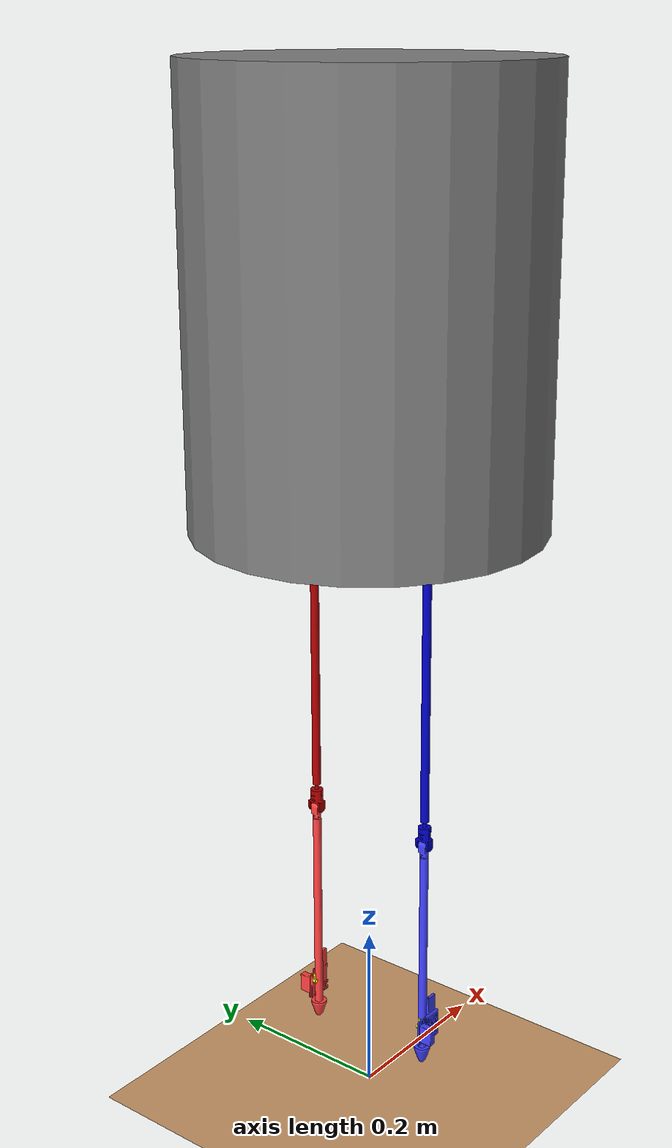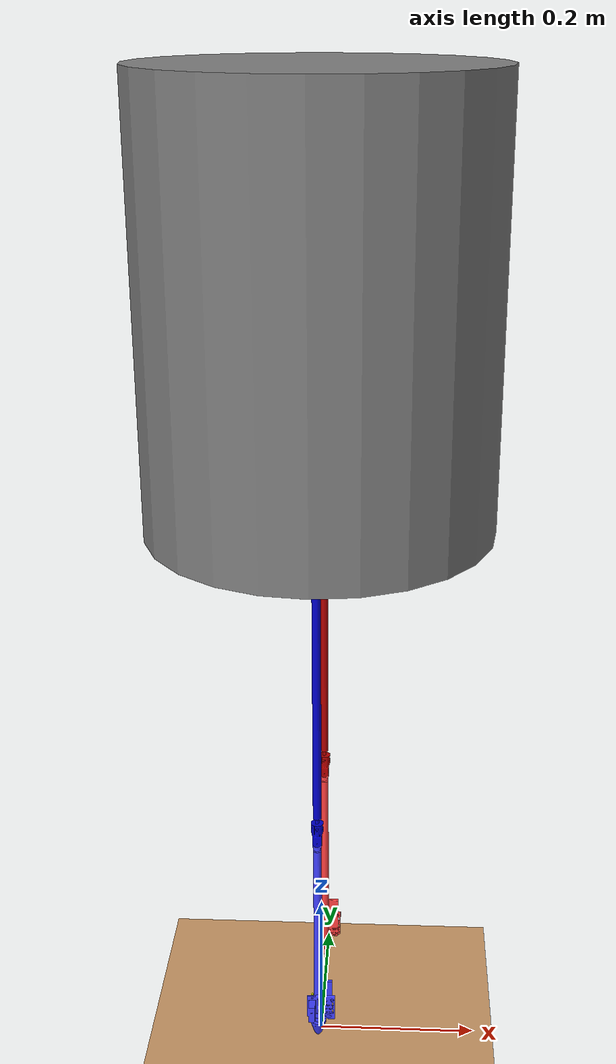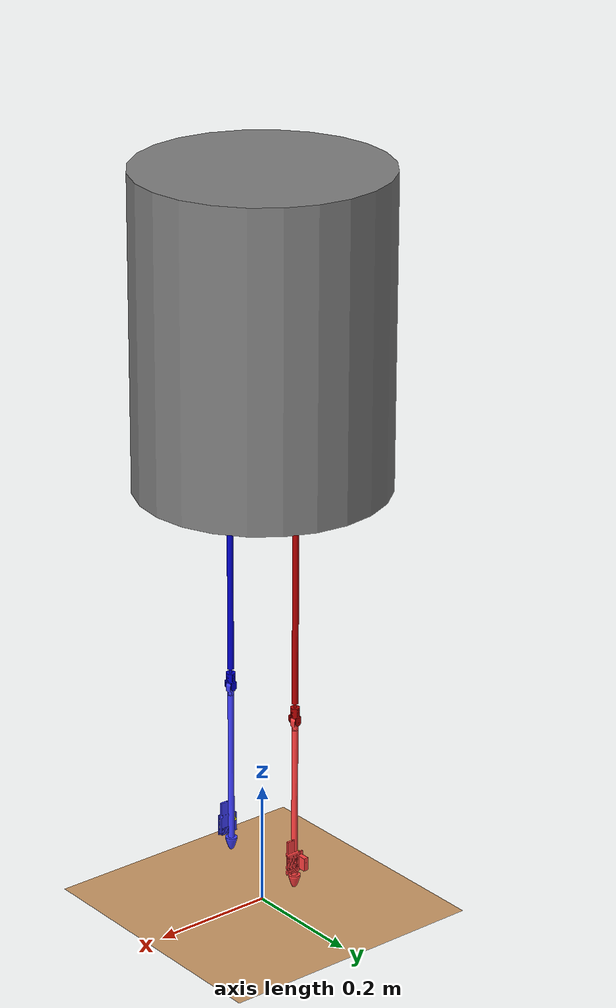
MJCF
<mujoco model="ballu">
  <include file="include/common.xml" />

  <worldbody>
    <include file="include/world_camera.xml" />

    <body name="BALLOON" pos="0 0 9.6250e-01">
      <geom class="collision" size="0.2 0.25" pos="0 0 0" />
      <geom contype="0" conaffinity="0" group="1" type="cylinder" size="0.2 0.25" pos="0 0 0" />
      <inertial mass="118.8e-3" pos="0 0 0" quat="1 0 0 0" fullinertia="0.002376 0.003663 0.003663 0 0 0" />

      <!-- Root Joint; 3D Motion (free_joint.xml) or 2D Planar Motion "planar_joint.xml" -->
      <include file="include/planar_joint.xml" />

    <body name="PELVIS" pos="0 0 -0.25">
      <!-- Root Joint; 3D Motion (free_joint.xml) or 2D Planar Motion "planar_joint.xml" -->

      <!-- Hinge Joint when balloon is main object and haning there -->
      <camera name="track" mode="trackcom" pos="0 -3 0.3" xyaxes="1 0 0 0 0 1" />

      <!-- Body Part Definition Starts -->
      <geom class="visual" material="pelvis" mesh="PELVIS" />
      <geom class="collision" material="pelvis" size="0.005 0.1" quat="0.707388 0.706825 0 0" />
      <inertial mass="31.2e-3" pos="0 0 0" quat="1 0 0 0" fullinertia="0.0000246887633608114 0.00000276868285563646 0.0000247832516992427 -0.0000000237246084649085 0.000000130406315413016 -0.0000000134962843018424" />

      <include file="include/legs.xml" />

    </body>
    </body>
  </worldbody>

  <include file="include/actuator_position.xml" />
</mujoco>

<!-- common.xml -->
<mujoco model="ballu">

  <!-- set defaults for units and else -->
  <compiler angle="radian" meshdir="../meshes/" coordinate="local" /> <!-- inertiafromgeom="true" -->
  <option integrator="RK4" timestep="0.01" />
  <default class="main">
    <joint solimplimit="0.95 0.9999 0.0001"/>
    <default class="visual">
      <geom type="mesh" contype="0" conaffinity="0" group="1" />
    </default>
    <default class="collision">
      <geom type="cylinder"/>
      <default class="collision_femur">
        <geom size="0.005 0.155" pos="0 0 -0.18" />
      </default>
      <default class="collision_tibia">
        <geom size="0.005 0.135" pos="0 0 -0.15" />
      </default>
      <default class="collision_motorarm">
        <geom size="0.0015 0.005" pos="0 0 0.005" />
      </default>
    </default>
    <default class="_lBall">
      <geom size="0.005" pos="0 0 -0.285" rgba="1 0.25 0.25 1" />
    </default>
    <default class="_rBall">
      <geom size="0.005" pos="0 0 -0.285" rgba="0.25 0.25 1 1" />
    </default>

    <default class="hip">
      <joint type="hinge" pos="0 0 0" axis="0 1 0" limited="true" range="-1.57 3.14" /> ref="0.2356"
    </default>
    <default class="knee">
      <joint type="hinge" pos="0 0 0" axis="0 1 0" limited="true" range="0.4712 1.2566" />  ref="-0.4712" 0.7854
    </default>
    <default class="ankle">
      <joint type="hinge" pos="0 0 0" axis="0 -1 0" limited="true" range="0 3.14" />
    </default>

  </default>

  <asset>
    <!-- Color macros for body parts -->
    <material name="pelvis" rgba="0 0.8 0 1" />
    <material name="lFemur" rgba="0.7 0 0 1" />
    <material name="lTibia" rgba="1 0.25 0.25 1" />
    <material name="lMotorarm" rgba="1 1 0 1" />
    <material name="rFemur" rgba="0 0 0.8 1" />
    <material name="rTibia" rgba="0.25 0.25 1 1" />
    <material name="rMotorarm" rgba="1 1 0 1" />

    <!-- Material and texture definitions for environments -->
    <texture builtin="gradient" height="100" rgb1="1 1 1" rgb2="0 0 0" type="skybox" width="100"/>
    <texture builtin="flat" height="1278" mark="cross" markrgb="1 1 1" name="texgeom" random="0.01" rgb1="0.8 0.6 0.4" rgb2="0.8 0.6 0.4" type="cube" width="127"/>
    <texture builtin="checker" height="100" name="texplane" rgb1="0 0 0" rgb2="0.8 0.8 0.8" type="2d" width="100"/>
    <material name="MatPlane" reflectance="0.5" shininess="1" specular="1" texrepeat="60 60" texture="texgeom"/> <!-- texture="texplane" -->

    <!-- import stl file -->
    <mesh name="PELVIS" file="PELVIS.STL" />
    <mesh name="FEMUR_LEFT" file="FEMUR_LEFT.STL" />
    <mesh name="TIBIA_LEFT" file="TIBIA_LEFT.STL" />
    <mesh name="MOTORARM_LEFT" file="MOTORARM_LEFT.STL" />
    <mesh name="FEMUR_RIGHT" file="FEMUR_RIGHT.STL" />
    <mesh name="TIBIA_RIGHT" file="TIBIA_RIGHT.STL" />
    <mesh name="MOTORARM_RIGHT" file="MOTORARM_RIGHT.STL" />
  </asset>
</mujoco>

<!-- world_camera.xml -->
<mujoco>
  <!-- World Visual settings -->
  <light cutoff="100" diffuse="1 1 1" dir="-0 0 -1.3" directional="true" exponent="1" pos="0 0 1.3" specular=".1 .1 .1"/>
  <geom conaffinity="1" condim="3" material="MatPlane" name="floor" pos="0 0 0" size="2 2 20" type="plane"/> <!-- rgba="0.8 0.9 0.8 1"  -->
  <camera name="perspective" mode="fixed" pos="2 -2 2.2" xyaxes="1 1 0 0 1 1"/>
</mujoco>

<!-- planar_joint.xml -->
<mujoco>
  <joint damping="0" name="root_front"    limited="false" pos="0 0 0" type="slide" axis="1 0 0"/>
  <joint damping="0" name="root_vertical" limited="false" pos="0 0 0" type="slide" axis="0 0 1"/>
  <joint damping="0" name="root_pitch"    limited="false" pos="0 0 0" type="hinge" axis="0 1 0"/>
</mujoco>

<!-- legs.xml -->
<mujoco model="ballu">
  <body name="FEMUR_LEFT" pos="0 0.08 0">
    <joint class="hip" name="HIP_LEFT" />
    <geom class="visual" material="lFemur" mesh="FEMUR_LEFT" />
    <geom class="collision_femur" material="lFemur" />
    <inertial mass="14.25e-3" pos="0 0 0" quat="1 0 0 0" fullinertia="0.000992572794661792 0.0009925251214246 0.000000238598574166697 3.314592029465E-12 -8.48115714592716E-11 4.58482540878061E-13" />

    <body name="TIBIA_LEFT" pos="0 0 -0.3653">
      <joint class="knee" name="KNEE_LEFT" />
      <geom class="visual" material="lTibia" mesh="TIBIA_LEFT" />
      <geom class="collision_tibia" material="lTibia" />
      <inertial mass="12.25e-3" pos="0 0 0" quat="1 0 0 0" fullinertia="0.000210778430980623 0.000210781824193771 0.0000000984724199212981 -4.11450847797993E-14 -5.96324824600706E-14 4.10919600738215E-14" />

      <body name="MOTORARM_LEFT" pos="-0.0071429 0.00063 -0.23732">
        <joint class="ankle" name="ANKLE_LEFT" />
        <geom class="visual" material="lMotorarm" mesh="MOTORARM_LEFT" />
        <geom class="collision_motorarm" material="lMotorarm" />
        <inertial mass="24.2e-3" pos="0 0 0" quat="1 0 0 0" fullinertia="0.0000116911972618819 0.0000152350724366498 0.00000588306550772331 0.00000105456982100237 -0.000000802326370789408 -0.000000294078181041568" />
      </body>
    </body>
  </body>

  <body name="FEMUR_RIGHT" pos="0 -0.08 0">
    <joint class="hip" name="HIP_RIGHT" />
    <geom class="visual" material="rFemur" mesh="FEMUR_RIGHT" />
    <geom class="collision_femur" material="rFemur" />
    <inertial mass="14.25e-3" pos="0 0 0" quat="1 0 0 0" fullinertia="0.000992572794661792 0.0009925251214246 0.000000238598574166697 3.314592029465E-12 -8.48115714592716E-11 4.58482540878061E-13" />

    <body name="TIBIA_RIGHT" pos="0 0 -0.3653">
      <joint class="knee" name="KNEE_RIGHT" />
      <geom class="visual" material="rTibia" mesh="TIBIA_RIGHT" />
      <geom class="collision_tibia" material="rTibia" />
      <inertial mass="12.25e-3" pos="0 0 0" quat="1 0 0 0" fullinertia="0.000210778430980623 0.000210781824193771 0.0000000984724199212981 -4.11450847797993E-14 -5.96324824600706E-14 4.10919600738215E-14" />

      <body name="MOTORARM_RIGHT" pos="-0.0071429 -0.00063 -0.23732">
        <joint class="ankle" name="ANKLE_RIGHT" />
        <geom class="visual" material="rMotorarm" mesh="MOTORARM_RIGHT" />
        <geom class="collision_motorarm" material="rMotorarm" />
        <inertial mass="24.2e-3" pos="0 0 0" quat="1 0 0 0" fullinertia="0.0000116911983803109 0.0000154093791125608 0.00000605737120167738 -0.0000011195719383494 -0.000000845323823662421 0.000000294080170337747" />
      </body>
    </body>
  </body>
</mujoco>

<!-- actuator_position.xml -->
<mujoco>
  <actuator>
    <!-- Knee Actuation case -->
    <position kp="2" ctrllimited="true" ctrlrange="0.4712 1.2566" joint="KNEE_LEFT" />
    <position kp="2" ctrllimited="true" ctrlrange="0.4712 1.2566" joint="KNEE_RIGHT" />

    <!-- Ankle Actuation case -->
  </actuator>
</mujoco>
